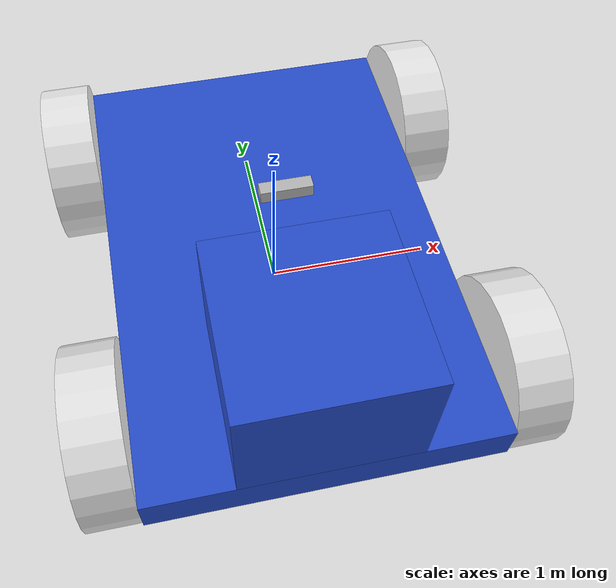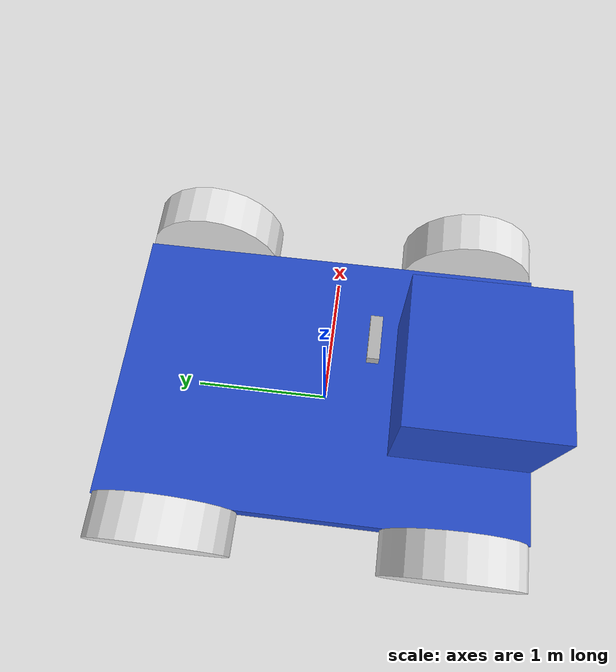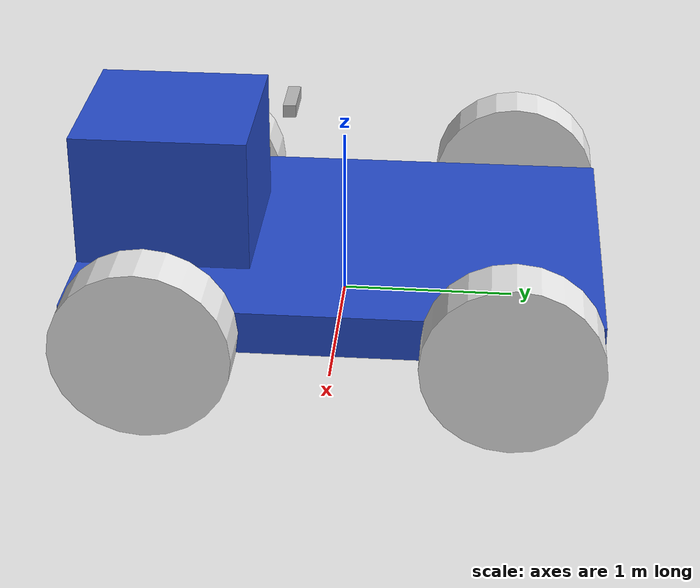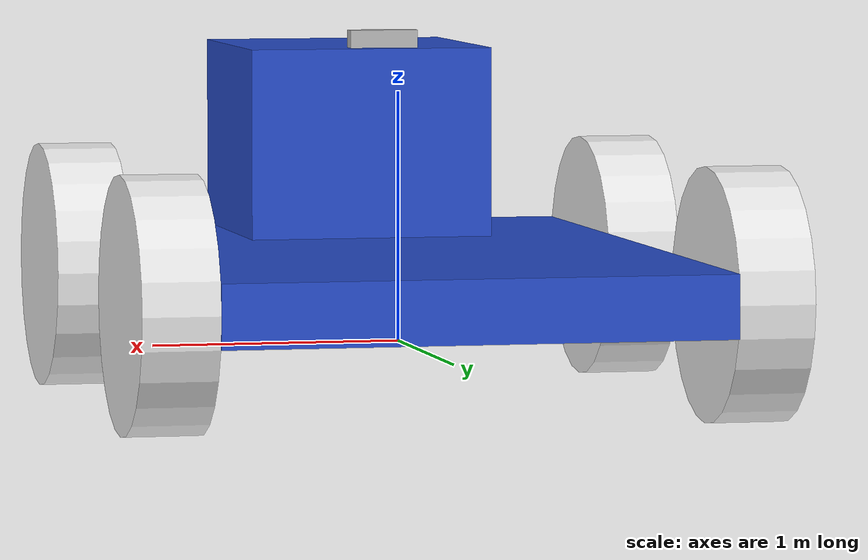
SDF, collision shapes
<?xml version='1.0'?>
<sdf version='1.7'>
  <model name='TractorTrailer_0'>
    <link name='Tractor_Body'>
      <inertial>
        <pose>0 0 0.250023 0 -0 0</pose>
        <mass>6501</mass>
        <inertia>
          <ixx>4909.04</ixx>
          <ixy>0</ixy>
          <ixz>0</ixz>
          <iyy>2200.71</iyy>
          <iyz>0</iyz>
          <izz>7041.84</izz>
        </inertia>
      </inertial>
      <self_collide>0</self_collide>
      <enable_wind>0</enable_wind>
      <kinematic>0</kinematic>
      <pose>0 0 0 0 -0 0</pose>
      <visual name='Tractor_Body_visual'>
        <pose>0 0 0.25 0 -0 0</pose>
        <geometry>
          <box>
            <size>2 3 0.25</size>
          </box>
        </geometry>
        <material>
          <script>
            <name>Gazebo/Blue</name>
            <uri>file://media/materials/scripts/gazebo.material</uri>
          </script>
          <shader type='pixel'/>
        </material>
        <transparency>0</transparency>
        <cast_shadows>1</cast_shadows>
      </visual>
      <visual name='Tractor_Body_fixed_joint_lump__Tractor_Weighted_Base_visual_1'>
        <pose>0 0 0.25 0 -0 0</pose>
        <geometry>
          <box>
            <size>2 3 0.25</size>
          </box>
        </geometry>
        <material>
          <script>
            <name>Gazebo/Blue</name>
            <uri>file://media/materials/scripts/gazebo.material</uri>
          </script>
          <shader type='pixel'/>
        </material>
        <transparency>0</transparency>
        <cast_shadows>1</cast_shadows>
      </visual>
      <visual name='Tractor_Body_fixed_joint_lump__Tractor_Cab_visual_2'>
        <pose>0 -1 0.65 0 -0 0</pose>
        <geometry>
          <box>
            <size>1 1 1</size>
          </box>
        </geometry>
        <material>
          <script>
            <name>Gazebo/Blue</name>
            <uri>file://media/materials/scripts/gazebo.material</uri>
          </script>
          <shader type='pixel'/>
        </material>
        <transparency>0</transparency>
        <cast_shadows>1</cast_shadows>
      </visual>
      <collision name='Tractor_Body_collision'>
        <laser_retro>0</laser_retro>
        <max_contacts>10</max_contacts>
        <pose>0 0 0.25 0 -0 0</pose>
        <geometry>
          <box>
            <size>2 3 0.25</size>
          </box>
        </geometry>
        <surface>
          <friction>
            <ode>
              <mu>1</mu>
              <mu2>1</mu2>
              <fdir1>0 0 0</fdir1>
              <slip1>0</slip1>
              <slip2>0</slip2>
            </ode>
            <torsional>
              <coefficient>1</coefficient>
              <patch_radius>0</patch_radius>
              <surface_radius>0</surface_radius>
              <use_patch_radius>1</use_patch_radius>
              <ode>
                <slip>0</slip>
              </ode>
            </torsional>
          </friction>
          <bounce>
            <restitution_coefficient>0</restitution_coefficient>
            <threshold>1e+06</threshold>
          </bounce>
          <contact>
            <collide_without_contact>0</collide_without_contact>
            <collide_without_contact_bitmask>1</collide_without_contact_bitmask>
            <collide_bitmask>1</collide_bitmask>
            <ode>
              <soft_cfm>0</soft_cfm>
              <soft_erp>0.2</soft_erp>
              <kp>1e+13</kp>
              <kd>1</kd>
              <max_vel>0.01</max_vel>
              <min_depth>0</min_depth>
            </ode>
            <bullet>
              <split_impulse>1</split_impulse>
              <split_impulse_penetration_threshold>-0.01</split_impulse_penetration_threshold>
              <soft_cfm>0</soft_cfm>
              <soft_erp>0.2</soft_erp>
              <kp>1e+13</kp>
              <kd>1</kd>
            </bullet>
          </contact>
        </surface>
      </collision>
      <collision name='Tractor_Body_fixed_joint_lump__Tractor_Weighted_Base_collision_1'>
        <laser_retro>0</laser_retro>
        <max_contacts>10</max_contacts>
        <pose>0 0 0.25 0 -0 0</pose>
        <geometry>
          <box>
            <size>2 3 0.25</size>
          </box>
        </geometry>
        <surface>
          <friction>
            <ode>
              <mu>1</mu>
              <mu2>1</mu2>
              <fdir1>0 0 0</fdir1>
              <slip1>0</slip1>
              <slip2>0</slip2>
            </ode>
            <torsional>
              <coefficient>1</coefficient>
              <patch_radius>0</patch_radius>
              <surface_radius>0</surface_radius>
              <use_patch_radius>1</use_patch_radius>
              <ode>
                <slip>0</slip>
              </ode>
            </torsional>
          </friction>
          <bounce>
            <restitution_coefficient>0</restitution_coefficient>
            <threshold>1e+06</threshold>
          </bounce>
          <contact>
            <collide_without_contact>0</collide_without_contact>
            <collide_without_contact_bitmask>1</collide_without_contact_bitmask>
            <collide_bitmask>1</collide_bitmask>
            <ode>
              <soft_cfm>0</soft_cfm>
              <soft_erp>0.2</soft_erp>
              <kp>1e+13</kp>
              <kd>1</kd>
              <max_vel>0.01</max_vel>
              <min_depth>0</min_depth>
            </ode>
            <bullet>
              <split_impulse>1</split_impulse>
              <split_impulse_penetration_threshold>-0.01</split_impulse_penetration_threshold>
              <soft_cfm>0</soft_cfm>
              <soft_erp>0.2</soft_erp>
              <kp>1e+13</kp>
              <kd>1</kd>
            </bullet>
          </contact>
        </surface>
      </collision>
      <collision name='Tractor_Body_fixed_joint_lump__Tractor_Cab_collision_2'>
        <laser_retro>0</laser_retro>
        <max_contacts>10</max_contacts>
        <pose>0 -1 0.65 0 -0 0</pose>
        <geometry>
          <box>
            <size>1 1 1</size>
          </box>
        </geometry>
        <surface>
          <friction>
            <ode>
              <mu>1</mu>
              <mu2>1</mu2>
              <fdir1>0 0 0</fdir1>
              <slip1>0</slip1>
              <slip2>0</slip2>
            </ode>
            <torsional>
              <coefficient>1</coefficient>
              <patch_radius>0</patch_radius>
              <surface_radius>0</surface_radius>
              <use_patch_radius>1</use_patch_radius>
              <ode>
                <slip>0</slip>
              </ode>
            </torsional>
          </friction>
          <bounce>
            <restitution_coefficient>0</restitution_coefficient>
            <threshold>1e+06</threshold>
          </bounce>
          <contact>
            <collide_without_contact>0</collide_without_contact>
            <collide_without_contact_bitmask>1</collide_without_contact_bitmask>
            <collide_bitmask>1</collide_bitmask>
            <ode>
              <soft_cfm>0</soft_cfm>
              <soft_erp>0.2</soft_erp>
              <kp>1e+13</kp>
              <kd>1</kd>
              <max_vel>0.01</max_vel>
              <min_depth>0</min_depth>
            </ode>
            <bullet>
              <split_impulse>1</split_impulse>
              <split_impulse_penetration_threshold>-0.01</split_impulse_penetration_threshold>
              <soft_cfm>0</soft_cfm>
              <soft_erp>0.2</soft_erp>
              <kp>1e+13</kp>
              <kd>1</kd>
            </bullet>
          </contact>
        </surface>
      </collision>
    </link>
    <link name='Front_Axle'>
      <pose>1e-06 -1 0.25 0 -0 0</pose>
      <inertial>
        <pose>0 0 0 0 -0 0</pose>
        <mass>1</mass>
        <inertia>
          <ixx>0</ixx>
          <ixy>0</ixy>
          <ixz>0</ixz>
          <iyy>0</iyy>
          <iyz>0</iyz>
          <izz>0</izz>
        </inertia>
      </inertial>
      <self_collide>0</self_collide>
      <enable_wind>0</enable_wind>
      <kinematic>0</kinematic>
      <visual name='Front_Axle_visual'>
        <pose>0 0 0 -3.1415 1.57079 3.14159</pose>
        <geometry>
          <cylinder>
            <length>2</length>
            <radius>0.1</radius>
          </cylinder>
        </geometry>
        <material>
          <script>
            <name>Gazebo/White</name>
            <uri>file://media/materials/scripts/gazebo.material</uri>
          </script>
          <shader type='pixel'/>
        </material>
        <transparency>0</transparency>
        <cast_shadows>1</cast_shadows>
      </visual>
      <collision name='Front_Axle_collision'>
        <laser_retro>0</laser_retro>
        <max_contacts>10</max_contacts>
        <pose>0 0 0 -3.1415 1.57079 3.14159</pose>
        <geometry>
          <cylinder>
            <radius>0.1</radius>
            <length>2</length>
          </cylinder>
        </geometry>
        <surface>
          <friction>
            <ode>
              <mu>1</mu>
              <mu2>1</mu2>
              <fdir1>0 0 0</fdir1>
              <slip1>0</slip1>
              <slip2>0</slip2>
            </ode>
            <torsional>
              <coefficient>1</coefficient>
              <patch_radius>0</patch_radius>
              <surface_radius>0</surface_radius>
              <use_patch_radius>1</use_patch_radius>
              <ode>
                <slip>0</slip>
              </ode>
            </torsional>
          </friction>
          <bounce>
            <restitution_coefficient>0</restitution_coefficient>
            <threshold>1e+06</threshold>
          </bounce>
          <contact>
            <collide_without_contact>0</collide_without_contact>
            <collide_without_contact_bitmask>1</collide_without_contact_bitmask>
            <collide_bitmask>1</collide_bitmask>
            <ode>
              <soft_cfm>0</soft_cfm>
              <soft_erp>0.2</soft_erp>
              <kp>1e+13</kp>
              <kd>1</kd>
              <max_vel>0.01</max_vel>
              <min_depth>0</min_depth>
            </ode>
            <bullet>
              <split_impulse>1</split_impulse>
              <split_impulse_penetration_threshold>-0.01</split_impulse_penetration_threshold>
              <soft_cfm>0</soft_cfm>
              <soft_erp>0.2</soft_erp>
              <kp>1e+13</kp>
              <kd>1</kd>
            </bullet>
          </contact>
        </surface>
      </collision>
    </link>
    <link name='Tractor_front_driv_wheel'>
      <pose>1.15 -0.999999 0.25 0 -0 0</pose>
      <inertial>
        <pose>0 0 0 0 -0 0</pose>
        <mass>50</mass>
        <inertia>
          <ixx>2.45</ixx>
          <ixy>0</ixy>
          <ixz>0</ixz>
          <iyy>2.45</iyy>
          <iyz>0</iyz>
          <izz>4.375</izz>
        </inertia>
      </inertial>
      <self_collide>0</self_collide>
      <enable_wind>0</enable_wind>
      <kinematic>0</kinematic>
      <visual name='Tractor_front_driv_wheel_visual'>
        <pose>0 0 0 -3.1415 1.57079 3.14159</pose>
        <geometry>
          <cylinder>
            <length>0.3</length>
            <radius>0.5</radius>
          </cylinder>
        </geometry>
        <material>
          <script>
            <name>Gazebo/White</name>
            <uri>file://media/materials/scripts/gazebo.material</uri>
          </script>
          <shader type='pixel'/>
        </material>
        <transparency>0</transparency>
        <cast_shadows>1</cast_shadows>
      </visual>
      <collision name='Tractor_front_driv_wheel_collision'>
        <laser_retro>0</laser_retro>
        <max_contacts>10</max_contacts>
        <pose>0 0 0 -3.1415 1.57079 3.14159</pose>
        <geometry>
          <cylinder>
            <radius>0.5</radius>
            <length>0.3</length>
          </cylinder>
        </geometry>
        <surface>
          <friction>
            <ode>
              <mu>1</mu>
              <mu2>1</mu2>
              <fdir1>0 0 0</fdir1>
              <slip1>0</slip1>
              <slip2>0</slip2>
            </ode>
            <torsional>
              <coefficient>1</coefficient>
              <patch_radius>0</patch_radius>
              <surface_radius>0</surface_radius>
              <use_patch_radius>1</use_patch_radius>
              <ode>
                <slip>0</slip>
              </ode>
            </torsional>
          </friction>
          <bounce>
            <restitution_coefficient>0</restitution_coefficient>
            <threshold>1e+06</threshold>
          </bounce>
          <contact>
            <collide_without_contact>0</collide_without_contact>
            <collide_without_contact_bitmask>1</collide_without_contact_bitmask>
            <collide_bitmask>1</collide_bitmask>
            <ode>
              <soft_cfm>0</soft_cfm>
              <soft_erp>0.2</soft_erp>
              <kp>1e+13</kp>
              <kd>1</kd>
              <max_vel>0.01</max_vel>
              <min_depth>0</min_depth>
            </ode>
            <bullet>
              <split_impulse>1</split_impulse>
              <split_impulse_penetration_threshold>-0.01</split_impulse_penetration_threshold>
              <soft_cfm>0</soft_cfm>
              <soft_erp>0.2</soft_erp>
              <kp>1e+13</kp>
              <kd>1</kd>
            </bullet>
          </contact>
        </surface>
      </collision>
    </link>
    <link name='Tractor_front_pass_wheel'>
      <pose>-1.15 -1 0.25 0 -0 0</pose>
      <inertial>
        <pose>0 0 0 0 -0 0</pose>
        <mass>50</mass>
        <inertia>
          <ixx>3.5</ixx>
          <ixy>0</ixy>
          <ixz>0</ixz>
          <iyy>3.5</iyy>
          <iyz>0</iyz>
          <izz>6.25</izz>
        </inertia>
      </inertial>
      <self_collide>0</self_collide>
      <enable_wind>0</enable_wind>
      <kinematic>0</kinematic>
      <visual name='Tractor_front_pass_wheel_visual'>
        <pose>0 0 0 -3.1415 1.57079 3.14159</pose>
        <geometry>
          <cylinder>
            <length>0.3</length>
            <radius>0.5</radius>
          </cylinder>
        </geometry>
        <material>
          <script>
            <name>Gazebo/White</name>
            <uri>file://media/materials/scripts/gazebo.material</uri>
          </script>
          <shader type='pixel'/>
        </material>
        <transparency>0</transparency>
        <cast_shadows>1</cast_shadows>
      </visual>
      <collision name='Tractor_front_pass_wheel_collision'>
        <laser_retro>0</laser_retro>
        <max_contacts>10</max_contacts>
        <pose>0 0 0 -3.1415 1.57079 3.14159</pose>
        <geometry>
          <cylinder>
            <radius>0.5</radius>
            <length>0.3</length>
          </cylinder>
        </geometry>
        <surface>
          <friction>
            <ode>
              <mu>1</mu>
              <mu2>1</mu2>
              <fdir1>0 0 0</fdir1>
              <slip1>0</slip1>
              <slip2>0</slip2>
            </ode>
            <torsional>
              <coefficient>1</coefficient>
              <patch_radius>0</patch_radius>
              <surface_radius>0</surface_radius>
              <use_patch_radius>1</use_patch_radius>
              <ode>
                <slip>0</slip>
              </ode>
            </torsional>
          </friction>
          <bounce>
            <restitution_coefficient>0</restitution_coefficient>
            <threshold>1e+06</threshold>
          </bounce>
          <contact>
            <collide_without_contact>0</collide_without_contact>
            <collide_without_contact_bitmask>1</collide_without_contact_bitmask>
            <collide_bitmask>1</collide_bitmask>
            <ode>
              <soft_cfm>0</soft_cfm>
              <soft_erp>0.2</soft_erp>
              <kp>1e+13</kp>
              <kd>1</kd>
              <max_vel>0.01</max_vel>
              <min_depth>0</min_depth>
            </ode>
            <bullet>
              <split_impulse>1</split_impulse>
              <split_impulse_penetration_threshold>-0.01</split_impulse_penetration_threshold>
              <soft_cfm>0</soft_cfm>
              <soft_erp>0.2</soft_erp>
              <kp>1e+13</kp>
              <kd>1</kd>
            </bullet>
          </contact>
        </surface>
      </collision>
    </link>

    <model name='kinect_ros'>
      <pose>0 -0.3 1.20 0 0 1.57</pose>
      <link name='link'>
        <inertial>
          <mass>0.1</mass>
        </inertial>
        <collision name='collision'>
          <geometry>
            <box>
              <size>0.073 0.276 0.072</size>
            </box>
          </geometry>
        </collision>
        <visual name='visual'>
          <geometry>
            <mesh>
              <uri>model://kinect/meshes/kinect.dae</uri>
            </mesh>
          </geometry>
        </visual>
        <sensor name='camera' type='depth'>
          <update_rate>20</update_rate>
          <camera>
            <horizontal_fov>1.0472</horizontal_fov>
            <image>
              <width>1920</width>
              <height>1080</height>
              <format>R8G8B8</format>
            </image>
            <clip>
              <near>0.05</near>
              <far>100</far>
            </clip>
          </camera>
          <plugin name='camera_plugin' filename='libgazebo_ros_openni_kinect.so'>
            <baseline>0.2</baseline>
            <alwaysOn>1</alwaysOn>
            <updateRate>0.0</updateRate>
            <cameraName>camera_ir</cameraName>
            <imageTopicName>/camera/color/image_raw</imageTopicName>
            <cameraInfoTopicName>/camera/color/camera_info</cameraInfoTopicName>
            <depthImageTopicName>/camera/depth/image_raw</depthImageTopicName>
            <depthImageCameraInfoTopicName>/camera/depth/camera_info</depthImageCameraInfoTopicName>
            <pointCloudTopicName>/camera/depth/points</pointCloudTopicName>
            <frameName>camera_link</frameName>
            <pointCloudCutoff>0.2</pointCloudCutoff>
            <pointCloudCutoffMax>3.0</pointCloudCutoffMax>
            <distortionK1>0</distortionK1>
            <distortionK2>0</distortionK2>
            <distortionK3>0</distortionK3>
            <distortionT1>0</distortionT1>
            <distortionT2>0</distortionT2>
            <CxPrime>0</CxPrime>
            <Cx>0</Cx>
            <Cy>0</Cy>
            <focalLength>0</focalLength>
            <hackBaseline>0</hackBaseline>
          </plugin>
        </sensor>
      </link>
    </model>

    <link name='Tractor_rear_driv_wheel'>
      <pose>1.15 1 0.2525 0 -0 0</pose>
      <inertial>
        <pose>0 0 0 0 -0 0</pose>
        <mass>100</mass>
        <inertia>
          <ixx>7</ixx>
          <ixy>0</ixy>
          <ixz>0</ixz>
          <iyy>7</iyy>
          <iyz>0</iyz>
          <izz>12.5</izz>
        </inertia>
      </inertial>
      <self_collide>0</self_collide>
      <enable_wind>0</enable_wind>
      <kinematic>0</kinematic>
      <visual name='Tractor_rear_driv_wheel_visual'>
        <pose>0 0 0 -3.1415 1.57079 3.14159</pose>
        <geometry>
          <cylinder>
            <length>0.3</length>
            <radius>0.5</radius>
          </cylinder>
        </geometry>
        <material>
          <script>
            <name>Gazebo/White</name>
            <uri>file://media/materials/scripts/gazebo.material</uri>
          </script>
          <shader type='pixel'/>
        </material>
        <transparency>0</transparency>
        <cast_shadows>1</cast_shadows>
      </visual>
      <collision name='Tractor_rear_driv_wheel_collision'>
        <laser_retro>0</laser_retro>
        <max_contacts>10</max_contacts>
        <pose>0 0 0 -3.1415 1.57079 3.14159</pose>
        <geometry>
          <cylinder>
            <radius>0.5</radius>
            <length>0.3</length>
          </cylinder>
        </geometry>
        <surface>
          <friction>
            <ode>
              <mu>1</mu>
              <mu2>1</mu2>
              <fdir1>0 0 0</fdir1>
              <slip1>0</slip1>
              <slip2>0</slip2>
            </ode>
            <torsional>
              <coefficient>1</coefficient>
              <patch_radius>0</patch_radius>
              <surface_radius>0</surface_radius>
              <use_patch_radius>1</use_patch_radius>
              <ode>
                <slip>0</slip>
              </ode>
            </torsional>
          </friction>
          <bounce>
            <restitution_coefficient>0</restitution_coefficient>
            <threshold>1e+06</threshold>
          </bounce>
          <contact>
            <collide_without_contact>0</collide_without_contact>
            <collide_without_contact_bitmask>1</collide_without_contact_bitmask>
            <collide_bitmask>1</collide_bitmask>
            <ode>
              <soft_cfm>0</soft_cfm>
              <soft_erp>0.2</soft_erp>
              <kp>1e+13</kp>
              <kd>1</kd>
              <max_vel>0.01</max_vel>
              <min_depth>0</min_depth>
            </ode>
            <bullet>
              <split_impulse>1</split_impulse>
              <split_impulse_penetration_threshold>-0.01</split_impulse_penetration_threshold>
              <soft_cfm>0</soft_cfm>
              <soft_erp>0.2</soft_erp>
              <kp>1e+13</kp>
              <kd>1</kd>
            </bullet>
          </contact>
        </surface>
      </collision>
    </link>
    <link name='Tractor_rear_pass_wheel'>
      <pose>-1.15 0.999999 0.2525 0 -0 0</pose>
      <inertial>
        <pose>0 0 0 0 -0 0</pose>
        <mass>100</mass>
        <inertia>
          <ixx>7</ixx>
          <ixy>0</ixy>
          <ixz>0</ixz>
          <iyy>7</iyy>
          <iyz>0</iyz>
          <izz>12.5</izz>
        </inertia>
      </inertial>
      <self_collide>0</self_collide>
      <enable_wind>0</enable_wind>
      <kinematic>0</kinematic>
      <visual name='Tractor_rear_pass_wheel_visual'>
        <pose>0 0 0 -3.1415 1.57079 3.14159</pose>
        <geometry>
          <cylinder>
            <length>0.3</length>
            <radius>0.5</radius>
          </cylinder>
        </geometry>
        <material>
          <script>
            <name>Gazebo/White</name>
            <uri>file://media/materials/scripts/gazebo.material</uri>
          </script>
          <shader type='pixel'/>
        </material>
        <transparency>0</transparency>
        <cast_shadows>1</cast_shadows>
      </visual>
      <collision name='Tractor_rear_pass_wheel_collision'>
        <laser_retro>0</laser_retro>
        <max_contacts>10</max_contacts>
        <pose>0 0 0 -3.1415 1.57079 3.14159</pose>
        <geometry>
          <cylinder>
            <radius>0.5</radius>
            <length>0.3</length>
          </cylinder>
        </geometry>
        <surface>
          <friction>
            <ode>
              <mu>1</mu>
              <mu2>1</mu2>
              <fdir1>0 0 0</fdir1>
              <slip1>0</slip1>
              <slip2>0</slip2>
            </ode>
            <torsional>
              <coefficient>1</coefficient>
              <patch_radius>0</patch_radius>
              <surface_radius>0</surface_radius>
              <use_patch_radius>1</use_patch_radius>
              <ode>
                <slip>0</slip>
              </ode>
            </torsional>
          </friction>
          <bounce>
            <restitution_coefficient>0</restitution_coefficient>
            <threshold>1e+06</threshold>
          </bounce>
          <contact>
            <collide_without_contact>0</collide_without_contact>
            <collide_without_contact_bitmask>1</collide_without_contact_bitmask>
            <collide_bitmask>1</collide_bitmask>
            <ode>
              <soft_cfm>0</soft_cfm>
              <soft_erp>0.2</soft_erp>
              <kp>1e+13</kp>
              <kd>1</kd>
              <max_vel>0.01</max_vel>
              <min_depth>0</min_depth>
            </ode>
            <bullet>
              <split_impulse>1</split_impulse>
              <split_impulse_penetration_threshold>-0.01</split_impulse_penetration_threshold>
              <soft_cfm>0</soft_cfm>
              <soft_erp>0.2</soft_erp>
              <kp>1e+13</kp>
              <kd>1</kd>
            </bullet>
          </contact>
        </surface>
      </collision>
    </link>
    <joint name='Front_Axle_Steer' type='revolute'>
      <parent>Tractor_Body</parent>
      <child>Front_Axle</child>
      <pose>0 0 0 0 -0 0</pose>
      <axis>
        <xyz>0 0 1</xyz>
        <limit>
          <lower>-0.52</lower>
          <upper>0.52</upper>
          <effort>1e+15</effort>
          <velocity>20</velocity>
        </limit>
        <dynamics>
          <spring_reference>0</spring_reference>
          <spring_stiffness>0</spring_stiffness>
          <damping>0</damping>
          <friction>0</friction>
        </dynamics>
      </axis>
      <physics>
        <ode>
          <limit>
            <cfm>0</cfm>
            <erp>0.2</erp>
          </limit>
          <suspension>
            <cfm>0</cfm>
            <erp>0.2</erp>
          </suspension>
        </ode>
      </physics>
    </joint>
    <joint name='Tractor_Body_JOINT_0' type='fixed'>
      <parent>Tractor_Body</parent>
      <child>kinect_ros::link</child>
      <pose>0 0 0 0 -0 0</pose>
      <physics>
        <ode>
          <limit>
            <cfm>0</cfm>
            <erp>0.2</erp>
          </limit>
          <suspension>
            <cfm>0</cfm>
            <erp>0.2</erp>
          </suspension>
        </ode>
      </physics>
    </joint>
    <joint name='Tractor_front_driv_wheel_joint' type='revolute'>
      <parent>Front_Axle</parent>
      <child>Tractor_front_driv_wheel</child>
      <pose>0 0 0 0 -0 0</pose>
      <axis>
        <xyz>1 0 0</xyz>
        <limit>
          <lower>-1e+16</lower>
          <upper>1e+16</upper>
          <effort>-1</effort>
          <velocity>-1</velocity>
        </limit>
        <dynamics>
          <spring_reference>0</spring_reference>
          <spring_stiffness>0</spring_stiffness>
          <damping>0</damping>
          <friction>0</friction>
        </dynamics>
      </axis>
      <physics>
        <ode>
          <limit>
            <cfm>0</cfm>
            <erp>0.2</erp>
          </limit>
          <suspension>
            <cfm>0</cfm>
            <erp>0.2</erp>
          </suspension>
        </ode>
      </physics>
    </joint>
    <joint name='Tractor_front_pass_wheel_joint' type='revolute'>
      <parent>Front_Axle</parent>
      <child>Tractor_front_pass_wheel</child>
      <pose>0 0 0 0 -0 0</pose>
      <axis>
        <xyz>1 0 0</xyz>
        <limit>
          <lower>-1e+16</lower>
          <upper>1e+16</upper>
          <effort>-1</effort>
          <velocity>-1</velocity>
        </limit>
        <dynamics>
          <spring_reference>0</spring_reference>
          <spring_stiffness>0</spring_stiffness>
          <damping>0</damping>
          <friction>0</friction>
        </dynamics>
      </axis>
      <physics>
        <ode>
          <limit>
            <cfm>0</cfm>
            <erp>0.2</erp>
          </limit>
          <suspension>
            <cfm>0</cfm>
            <erp>0.2</erp>
          </suspension>
        </ode>
      </physics>
    </joint>
    <joint name='Tractor_rear_driv_wheel_joint' type='revolute'>
      <parent>Tractor_Body</parent>
      <child>Tractor_rear_driv_wheel</child>
      <pose>0 0 0 0 -0 0</pose>
      <axis>
        <xyz>1 0 0</xyz>
        <limit>
          <lower>-1e+16</lower>
          <upper>1e+16</upper>
          <effort>-1</effort>
          <velocity>-1</velocity>
        </limit>
        <dynamics>
          <spring_reference>0</spring_reference>
          <spring_stiffness>0</spring_stiffness>
          <damping>0</damping>
          <friction>0</friction>
        </dynamics>
      </axis>
      <physics>
        <ode>
          <limit>
            <cfm>0</cfm>
            <erp>0.2</erp>
          </limit>
          <suspension>
            <cfm>0</cfm>
            <erp>0.2</erp>
          </suspension>
        </ode>
      </physics>
    </joint>
    <joint name='Tractor_rear_pass_wheel_joint' type='revolute'>
      <parent>Tractor_Body</parent>
      <child>Tractor_rear_pass_wheel</child>
      <pose>0 0 0 0 -0 0</pose>
      <axis>
        <xyz>1 0 0</xyz>
        <limit>
          <lower>-1e+16</lower>
          <upper>1e+16</upper>
          <effort>-1</effort>
          <velocity>-1</velocity>
        </limit>
        <dynamics>
          <spring_reference>0</spring_reference>
          <spring_stiffness>0</spring_stiffness>
          <damping>0</damping>
          <friction>0</friction>
        </dynamics>
      </axis>
      <physics>
        <ode>
          <limit>
            <cfm>0</cfm>
            <erp>0.2</erp>
          </limit>
          <suspension>
            <cfm>0</cfm>
            <erp>0.2</erp>
          </suspension>
        </ode>
      </physics>
    </joint>
    <static>0</static>
    <allow_auto_disable>1</allow_auto_disable>
    <plugin name='gazebo_ros_control' filename='libgazebo_ros_control.so'>
        <robotNamespace>/TractorTrailer_0</robotNamespace>
      </plugin>
      <transmission name="Driv_Wheel">
      <type>transmission_interface/SimpleTransmission</type>
      <joint name="Tractor_rear_driv_wheel_joint">
        <hardwareInterface>hardware_interface/EffortJointInterface</hardwareInterface>
      </joint>
      <actuator name="Driv_Speed">
        <hardwareInterface>hardware_interface/EffortJointInterface</hardwareInterface>
        <mechanicalReduction>1</mechanicalReduction>
      </actuator>
    </transmission>

    <transmission name="Pass_Wheel">
      <type>transmission_interface/SimpleTransmission</type>
      <joint name="Tractor_rear_pass_wheel_joint">
        <hardwareInterface>hardware_interface/EffortJointInterface</hardwareInterface>
      </joint>
      <actuator name="Pass_Speed">
        <hardwareInterface>hardware_interface/EffortJointInterface</hardwareInterface>
        <mechanicalReduction>1</mechanicalReduction>
      </actuator>
    </transmission>

    <transmission name="Axle_Steer_Tran">
      <type>transmission_interface/SimpleTransmission</type>
      <joint name="Front_Axle_Steer">
        <hardwareInterface>hardware_interface/EffortJointInterface</hardwareInterface>
      </joint>
      <actuator name="Axle_Steer">
        <hardwareInterface>hardware_interface/EffortJointInterface</hardwareInterface>
        <mechanicalReduction>1</mechanicalReduction>
      </actuator>
    </transmission>
  </model>
</sdf>
